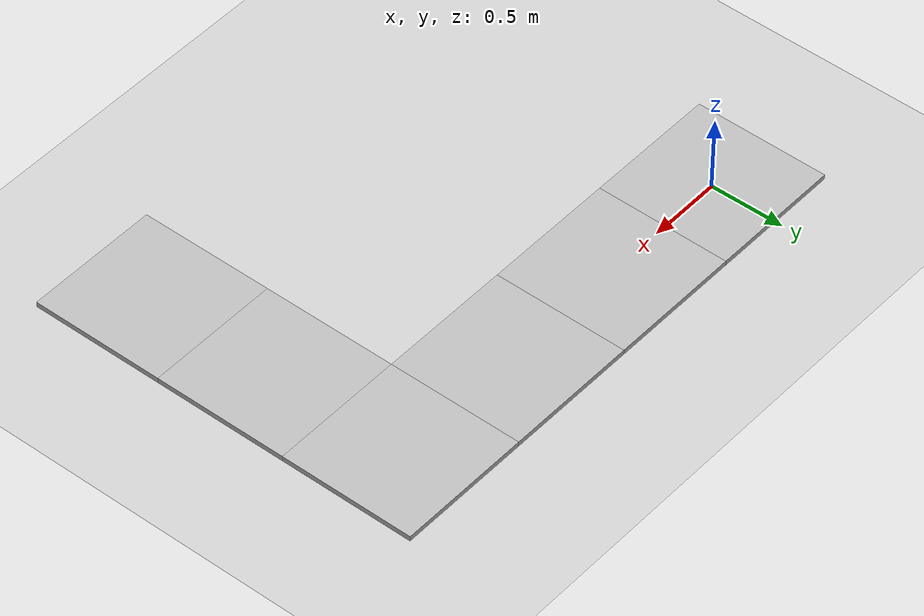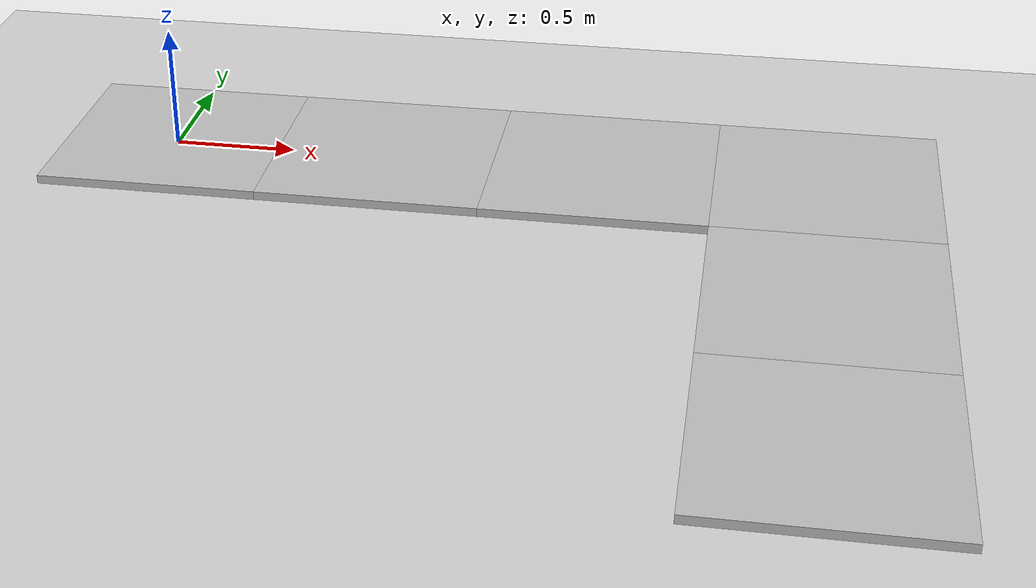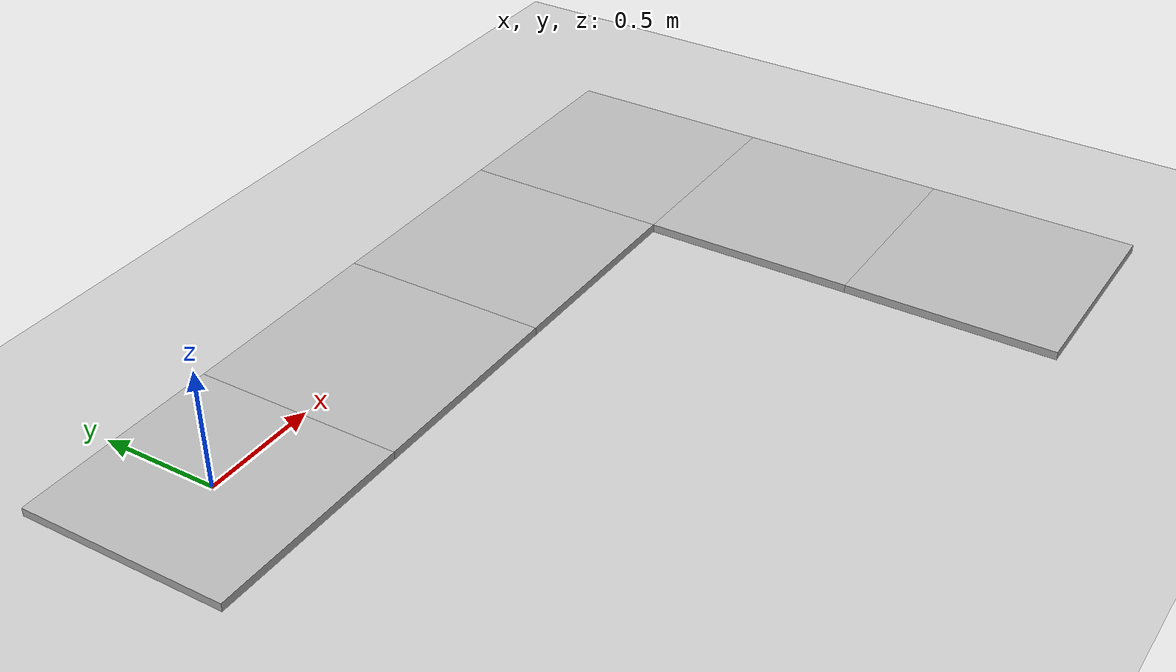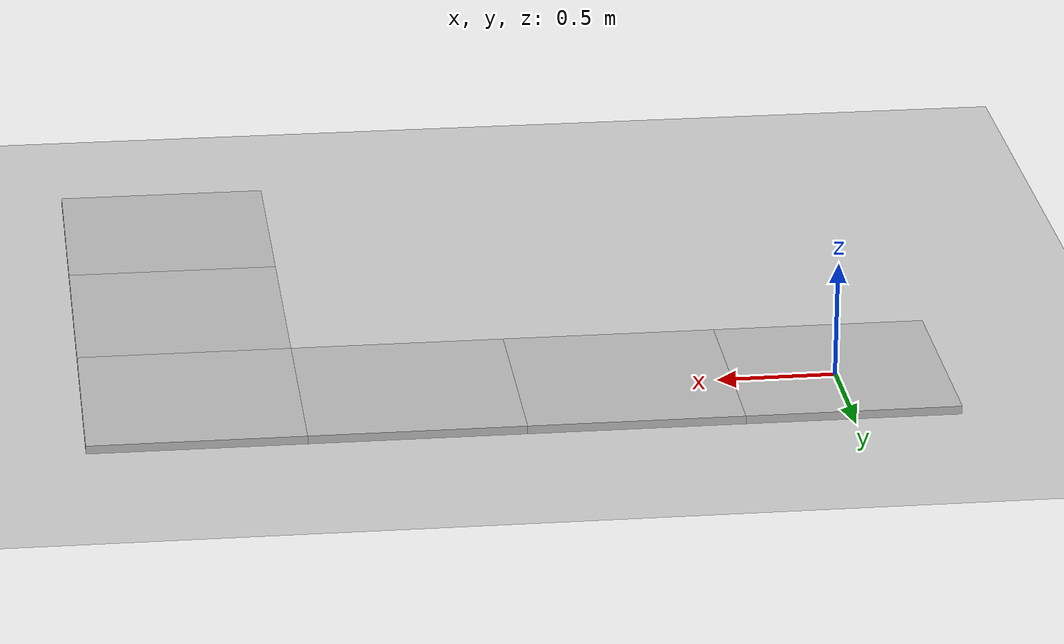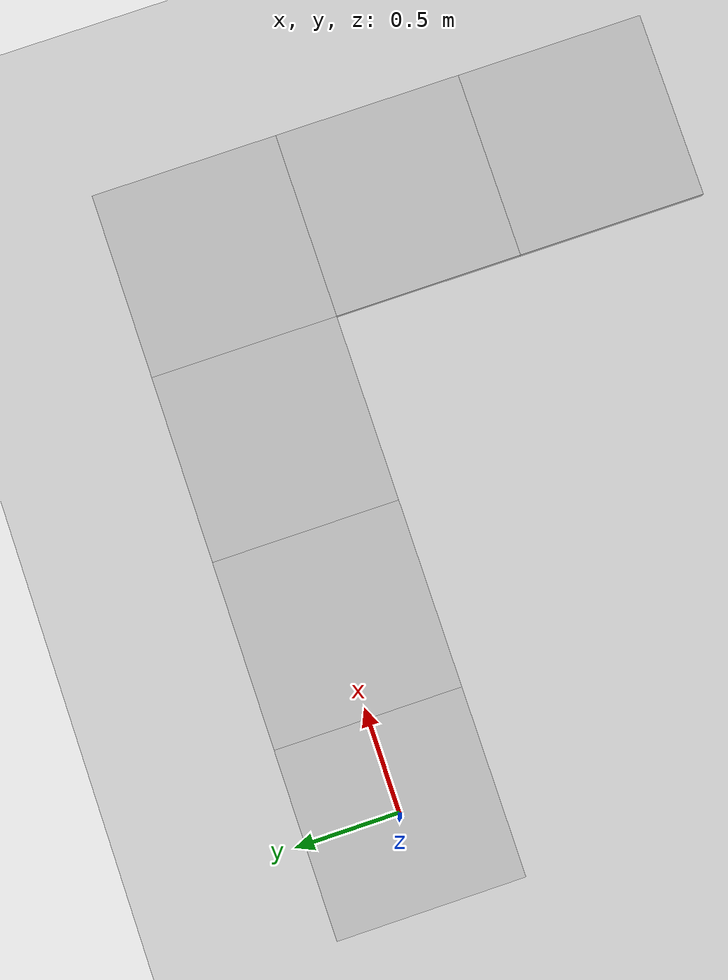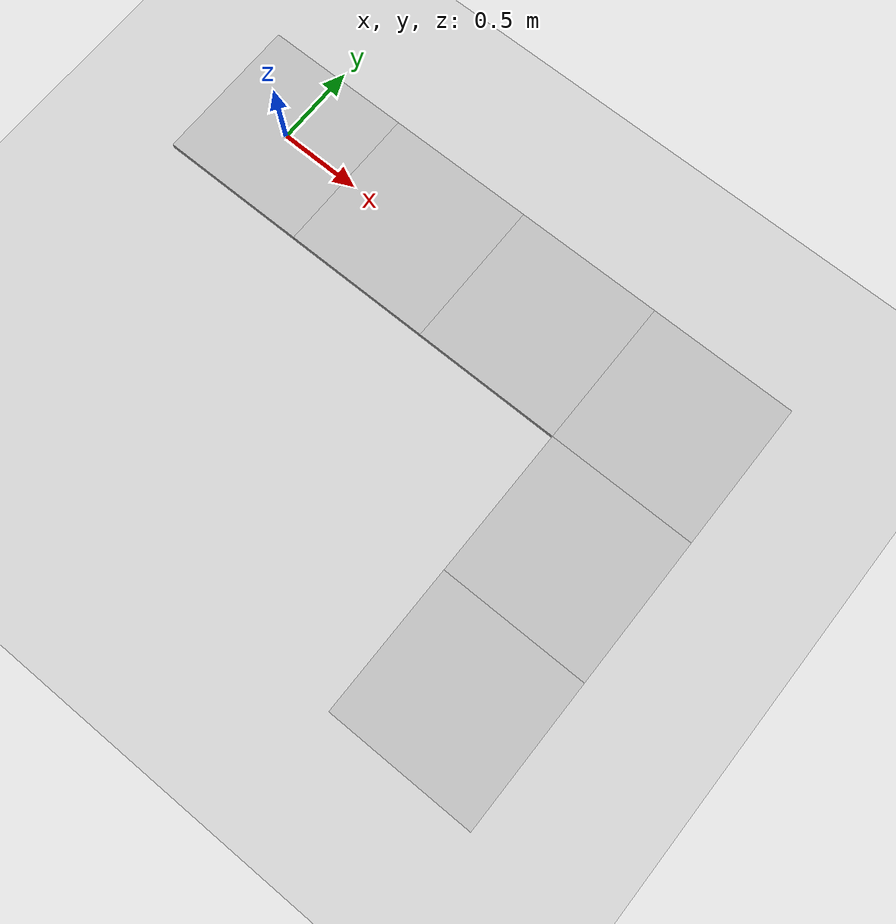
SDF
<?xml version="1.0" ?>
<sdf version="1.6">
  <world name="HACField">
    <scene>
      <shadows>0</shadows>
    </scene>

    <gui>
      <camera name="user_camera">
        <pose>2.7 -5.3 4.5 0 0.64 1.57</pose>
      </camera>
    </gui>

    <include>
      <uri>model://sun</uri>
    </include>

    <model name="panel1">
      <include>
        <uri>model://hac_start_panel</uri>
      </include>
      <pose>0 0 0 0 0 0</pose>
    </model>

    <model name="panel2">
      <include>
        <uri>model://hac_ii_panel</uri>
      </include>
      <pose>0.9 0 0 0 0 0</pose>
    </model>

    <model name="panel3">
      <include>
        <uri>model://hac_ii_panel</uri>
      </include>
      <pose>1.8 0 0 0 0 0</pose>
    </model>

    <model name="panel4">
      <include>
        <uri>model://hac_l_panel</uri>
      </include>
      <pose>2.7 0 0 0 0 -1.5708</pose>
    </model>

    <model name="panel5">
      <include>
        <uri>model://hac_ii_panel</uri>
      </include>
      <pose>2.7 -0.9 0 0 0 -1.5708</pose>
    </model>

    <model name="panel6">
      <include>
        <uri>model://hac_u_panel</uri>
      </include>
      <pose>2.7 -1.8 0 0 0 1.5708</pose>
    </model>

    <model name="ground_plane">
      <include>
        <uri>model://ground_plane</uri>
      </include>

      <joint name='ground_joint' type='fixed'>
        <parent>ground_plane::link</parent>
        <child>table::link</child>
      </joint>
    </model>
  </world>
</sdf>

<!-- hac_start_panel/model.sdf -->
<sdf version="1.5">
  <model name="hac_start_panel">
    <static>true</static>
    <link name="panel">
      <pose>0 0 0.0175 0 0 0</pose>
      <collision name='collision'>
        <geometry>
          <box>
            <size>0.9 0.9 0.035</size>
          </box>
        </geometry>
      </collision>

      <visual name='visual'>
        <geometry>
          <box>
            <size>0.9 0.9 0.035</size>
          </box>
        </geometry>
        <material>
          <script>
            <uri>model://hac_start_panel/materials/start_panel.material</uri>
            <name>StartPanel</name>
          </script>
        </material>
      </visual>
    </link>
  </model>
</sdf>

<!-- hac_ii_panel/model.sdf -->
<sdf version="1.5">
  <model name="hac_ii_panel">
    <static>true</static>
    <link name="panel">
      <pose>0 0 0.0175 0 0 0</pose>
      <collision name='collision'>
        <geometry>
          <box>
            <size>0.9 0.9 0.035</size>
          </box>
        </geometry>
      </collision>

      <visual name='visual'>
        <geometry>
          <box>
            <size>0.9 0.9 0.035</size>
          </box>
        </geometry>
        <material>
          <script>
            <uri>model://hac_ii_panel/materials/ii_panel.material</uri>
            <name>IIPanel</name>
          </script>
        </material>
      </visual>
    </link>
  </model>
</sdf>

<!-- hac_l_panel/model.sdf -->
<sdf version="1.5">
  <model name="hac_l_panel">
    <static>true</static>
    <link name="panel">
      <pose>0 0 0.0175 0 0 0</pose>
      <collision name='collision'>
        <geometry>
          <box>
            <size>0.9 0.9 0.035</size>
          </box>
        </geometry>
      </collision>

      <visual name='visual'>
        <geometry>
          <box>
            <size>0.9 0.9 0.035</size>
          </box>
        </geometry>
        <material>
          <script>
            <uri>model://hac_l_panel/materials/l_panel.material</uri>
            <name>LPanel</name>
          </script>
        </material>
      </visual>
    </link>
  </model>
</sdf>

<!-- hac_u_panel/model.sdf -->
<sdf version="1.5">
  <model name="hac_u_panel">
    <static>true</static>
    <link name="panel">
      <pose>0 0 0.0175 0 0 0</pose>
      <collision name='collision'>
        <geometry>
          <box>
            <size>0.9 0.9 0.035</size>
          </box>
        </geometry>
      </collision>

      <visual name='visual'>
        <geometry>
          <box>
            <size>0.9 0.9 0.035</size>
          </box>
        </geometry>
        <material>
          <script>
            <uri>model://hac_u_panel/materials/u_panel.material</uri>
            <name>UPanel</name>
          </script>
        </material>
      </visual>
    </link>
  </model>
</sdf>
